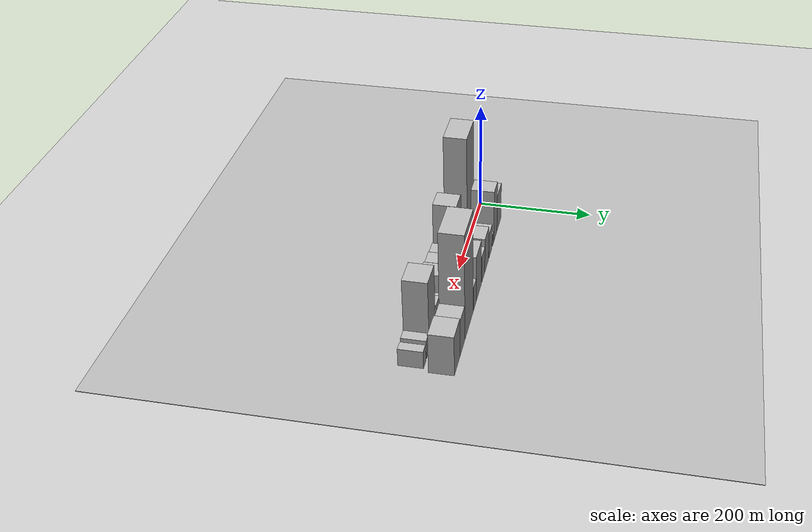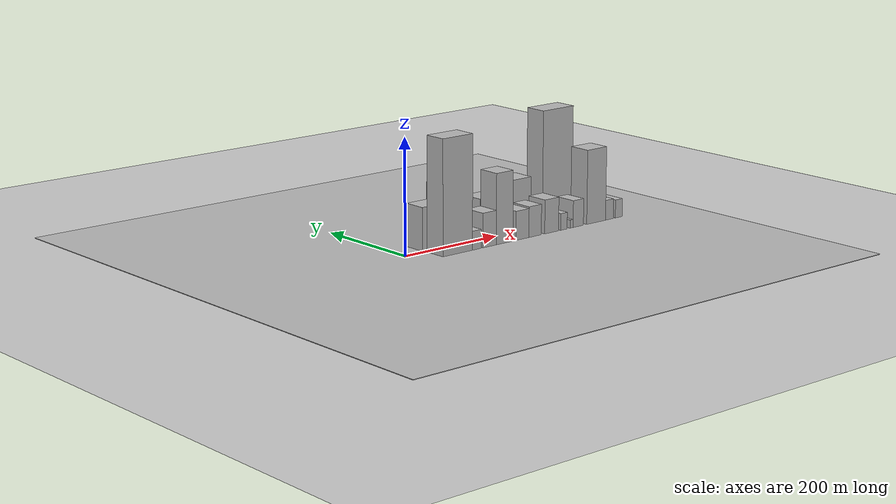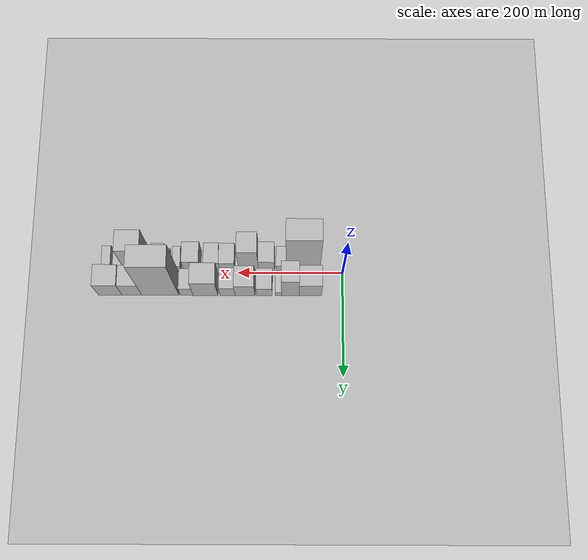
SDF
<?xml version="1.0" encoding="utf-8"?>

<sdf version="1.6">

   <world name="default">

      <gui fullscreen="0">

         <camera name="user_camera">

            <pose>-15 0 4.57585 0 0 0</pose>

            <view_controller>orbit</view_controller>

         </camera>

      </gui>

      <scene>

         <sky>

           <clouds>

             <speed>12</speed>

           </clouds>

         </sky>

         <ambient>0.4 0.4 0.4 1</ambient>

         <background>0.7 0.7 0.7 1</background>

         <shadows>1</shadows>

      </scene>

      <gravity>0 0 -9.8066</gravity>

      <magnetic_field>6e-06 2.3e-05 -4.2e-05</magnetic_field>

      <physics default="0" name="default_physics" type="ode">

         <ode>

            <solver>

               <type>quick</type>

               <iters>10</iters>

               <sor>1.0</sor>

               <use_dynamic_moi_rescaling>0</use_dynamic_moi_rescaling>

            </solver>

            <constraints>

               <cfm>0</cfm>

               <erp>0.2</erp>

               <contact_max_correcting_vel>100</contact_max_correcting_vel>

               <contact_surface_layer>0.001</contact_surface_layer>

            </constraints>

         </ode>

         <max_step_size>0.004</max_step_size>

         <real_time_factor>1</real_time_factor>

         <real_time_update_rate>250</real_time_update_rate>

      </physics>

      <light name="sun" type="directional">

         <cast_shadows>1</cast_shadows>

         <pose>0 0 10 0 0 0</pose>

         <diffuse>0.8 0.8 0.8 1</diffuse>

         <specular>0.2 0.2 0.2 1</specular>

         <attenuation>

            <range>1000</range>

            <constant>0.9</constant>

            <linear>0.01</linear>

            <quadratic>0.001</quadratic>

         </attenuation>

         <direction>-0.5 0.1 -0.9</direction>

      </light>

      <include>

         <name>ground_plane_1</name>

         <uri>model://HANNAS_ground_plane</uri>

         <pose>0 0 0  0 0 0</pose>

      </include>

      <include>

         <name>ground_plane_2</name>

         <uri>model://HANNAS_ground_plane</uri>

         <pose>100 0 0  0 0 0</pose>

      </include>

      <model name="building_1">

         <static>1</static>

         <pose frame="">61.4290 24.5000 0 0.000000 0.000000 1.570796</pose>

         <link name="link">

            <pose frame="">0 0 37.50 0 0 0</pose>

            <collision name="collision">

               <geometry>

                  <box>

                     <size>40.0000 42.8580 75.0000</size>

                  </box>

               </geometry>

               <max_contacts>10</max_contacts>

               <surface>

                  <contact>

                     <ode/>

                  </contact>

                  <bounce/>

                  <friction>

                     <torsional>

                        <ode/>

                     </torsional>

                     <ode/>

                  </friction>

               </surface>

            </collision>

            <visual name="visual">

               <cast_shadows>0</cast_shadows>

               <geometry>

                  <box>

                     <size>40.0000 42.8580 75.0000</size>

                  </box>

               </geometry>

               <material>

                  <script>

                     <uri>model://HANNAS_wall/materials/scripts</uri>

                     <uri>model://HANNAS_wall/materials/textures</uri>

                     <name>vrc/HANNAS_wall</name>

                  </script>

               </material>

            </visual>

            <self_collide>0</self_collide>

            <enable_wind>0</enable_wind>

            <kinematic>0</kinematic>

         </link>

      </model>

      <model name="building_2">

         <static>1</static>

         <pose frame="">99.4082 24.5000 0 0.000000 0.000000 1.570796</pose>

         <link name="link">

            <pose frame="">0 0 52.50 0 0 0</pose>

            <collision name="collision">

               <geometry>

                  <box>

                     <size>40.0000 33.1004 105.0000</size>

                  </box>

               </geometry>

               <max_contacts>10</max_contacts>

               <surface>

                  <contact>

                     <ode/>

                  </contact>

                  <bounce/>

                  <friction>

                     <torsional>

                        <ode/>

                     </torsional>

                     <ode/>

                  </friction>

               </surface>

            </collision>

            <visual name="visual">

               <cast_shadows>0</cast_shadows>

               <geometry>

                  <box>

                     <size>40.0000 33.1004 105.0000</size>

                  </box>

               </geometry>

               <material>

                  <script>

                     <uri>model://HANNAS_wall/materials/scripts</uri>

                     <uri>model://HANNAS_wall/materials/textures</uri>

                     <name>vrc/HANNAS_wall</name>

                  </script>

               </material>

            </visual>

            <self_collide>0</self_collide>

            <enable_wind>0</enable_wind>

            <kinematic>0</kinematic>

         </link>

      </model>

      <model name="building_3">

         <static>1</static>

         <pose frame="">121.8091 24.5000 0 0.000000 0.000000 1.570796</pose>

         <link name="link">

            <pose frame="">0 0 12.00 0 0 0</pose>

            <collision name="collision">

               <geometry>

                  <box>

                     <size>40.0000 11.7015 24.0000</size>

                  </box>

               </geometry>

               <max_contacts>10</max_contacts>

               <surface>

                  <contact>

                     <ode/>

                  </contact>

                  <bounce/>

                  <friction>

                     <torsional>

                        <ode/>

                     </torsional>

                     <ode/>

                  </friction>

               </surface>

            </collision>

            <visual name="visual">

               <cast_shadows>0</cast_shadows>

               <geometry>

                  <box>

                     <size>40.0000 11.7015 24.0000</size>

                  </box>

               </geometry>

               <material>

                  <script>

                     <uri>model://HANNAS_wall/materials/scripts</uri>

                     <uri>model://HANNAS_wall/materials/textures</uri>

                     <name>vrc/HANNAS_wall</name>

                  </script>

               </material>

            </visual>

            <self_collide>0</self_collide>

            <enable_wind>0</enable_wind>

            <kinematic>0</kinematic>

         </link>

      </model>

      <model name="building_4">

         <static>1</static>

         <pose frame="">148.6556 24.5000 0 0.000000 0.000000 1.570796</pose>

         <link name="link">

            <pose frame="">0 0 25.50 0 0 0</pose>

            <collision name="collision">

               <geometry>

                  <box>

                     <size>40.0000 29.9914 51.0000</size>

                  </box>

               </geometry>

               <max_contacts>10</max_contacts>

               <surface>

                  <contact>

                     <ode/>

                  </contact>

                  <bounce/>

                  <friction>

                     <torsional>

                        <ode/>

                     </torsional>

                     <ode/>

                  </friction>

               </surface>

            </collision>

            <visual name="visual">

               <cast_shadows>0</cast_shadows>

               <geometry>

                  <box>

                     <size>40.0000 29.9914 51.0000</size>

                  </box>

               </geometry>

               <material>

                  <script>

                     <uri>model://HANNAS_wall/materials/scripts</uri>

                     <uri>model://HANNAS_wall/materials/textures</uri>

                     <name>vrc/HANNAS_wall</name>

                  </script>

               </material>

            </visual>

            <self_collide>0</self_collide>

            <enable_wind>0</enable_wind>

            <kinematic>0</kinematic>

         </link>

      </model>

      <model name="building_5">

         <static>1</static>

         <pose frame="">185.4385 24.5000 0 0.000000 0.000000 1.570796</pose>

         <link name="link">

            <pose frame="">0 0 34.50 0 0 0</pose>

            <collision name="collision">

               <geometry>

                  <box>

                     <size>40.0000 37.5743 69.0000</size>

                  </box>

               </geometry>

               <max_contacts>10</max_contacts>

               <surface>

                  <contact>

                     <ode/>

                  </contact>

                  <bounce/>

                  <friction>

                     <torsional>

                        <ode/>

                     </torsional>

                     <ode/>

                  </friction>

               </surface>

            </collision>

            <visual name="visual">

               <cast_shadows>0</cast_shadows>

               <geometry>

                  <box>

                     <size>40.0000 37.5743 69.0000</size>

                  </box>

               </geometry>

               <material>

                  <script>

                     <uri>model://HANNAS_wall/materials/scripts</uri>

                     <uri>model://HANNAS_wall/materials/textures</uri>

                     <name>vrc/HANNAS_wall</name>

                  </script>

               </material>

            </visual>

            <self_collide>0</self_collide>

            <enable_wind>0</enable_wind>

            <kinematic>0</kinematic>

         </link>

      </model>

      <model name="building_6">

         <static>1</static>

         <pose frame="">218.5571 24.5000 0 0.000000 0.000000 1.570796</pose>

         <link name="link">

            <pose frame="">0 0 27.00 0 0 0</pose>

            <collision name="collision">

               <geometry>

                  <box>

                     <size>40.0000 28.6629 54.0000</size>

                  </box>

               </geometry>

               <max_contacts>10</max_contacts>

               <surface>

                  <contact>

                     <ode/>

                  </contact>

                  <bounce/>

                  <friction>

                     <torsional>

                        <ode/>

                     </torsional>

                     <ode/>

                  </friction>

               </surface>

            </collision>

            <visual name="visual">

               <cast_shadows>0</cast_shadows>

               <geometry>

                  <box>

                     <size>40.0000 28.6629 54.0000</size>

                  </box>

               </geometry>

               <material>

                  <script>

                     <uri>model://HANNAS_wall/materials/scripts</uri>

                     <uri>model://HANNAS_wall/materials/textures</uri>

                     <name>vrc/HANNAS_wall</name>

                  </script>

               </material>

            </visual>

            <self_collide>0</self_collide>

            <enable_wind>0</enable_wind>

            <kinematic>0</kinematic>

         </link>

      </model>

      <model name="building_7">

         <static>1</static>

         <pose frame="">260.4866 24.5000 0 0.000000 0.000000 1.570796</pose>

         <link name="link">

            <pose frame="">0 0 45.00 0 0 0</pose>

            <collision name="collision">

               <geometry>

                  <box>

                     <size>40.0000 47.1961 90.0000</size>

                  </box>

               </geometry>

               <max_contacts>10</max_contacts>

               <surface>

                  <contact>

                     <ode/>

                  </contact>

                  <bounce/>

                  <friction>

                     <torsional>

                        <ode/>

                     </torsional>

                     <ode/>

                  </friction>

               </surface>

            </collision>

            <visual name="visual">

               <cast_shadows>0</cast_shadows>

               <geometry>

                  <box>

                     <size>40.0000 47.1961 90.0000</size>

                  </box>

               </geometry>

               <material>

                  <script>

                     <uri>model://HANNAS_wall/materials/scripts</uri>

                     <uri>model://HANNAS_wall/materials/textures</uri>

                     <name>vrc/HANNAS_wall</name>

                  </script>

               </material>

            </visual>

            <self_collide>0</self_collide>

            <enable_wind>0</enable_wind>

            <kinematic>0</kinematic>

         </link>

      </model>

      <model name="building_8">

         <static>1</static>

         <pose frame="">296.1059 24.5000 0 0.000000 0.000000 1.570796</pose>

         <link name="link">

            <pose frame="">0 0 24.00 0 0 0</pose>

            <collision name="collision">

               <geometry>

                  <box>

                     <size>40.0000 24.0427 48.0000</size>

                  </box>

               </geometry>

               <max_contacts>10</max_contacts>

               <surface>

                  <contact>

                     <ode/>

                  </contact>

                  <bounce/>

                  <friction>

                     <torsional>

                        <ode/>

                     </torsional>

                     <ode/>

                  </friction>

               </surface>

            </collision>

            <visual name="visual">

               <cast_shadows>0</cast_shadows>

               <geometry>

                  <box>

                     <size>40.0000 24.0427 48.0000</size>

                  </box>

               </geometry>

               <material>

                  <script>

                     <uri>model://HANNAS_wall/materials/scripts</uri>

                     <uri>model://HANNAS_wall/materials/textures</uri>

                     <name>vrc/HANNAS_wall</name>

                  </script>

               </material>

            </visual>

            <self_collide>0</self_collide>

            <enable_wind>0</enable_wind>

            <kinematic>0</kinematic>

         </link>

      </model>

      <model name="building_9">

         <static>1</static>

         <pose frame="">346.4396 24.5000 0 0.000000 0.000000 1.570796</pose>

         <link name="link">

            <pose frame="">0 0 100.50 0 0 0</pose>

            <collision name="collision">

               <geometry>

                  <box>

                     <size>40.0000 70.6246 201.0000</size>

                  </box>

               </geometry>

               <max_contacts>10</max_contacts>

               <surface>

                  <contact>

                     <ode/>

                  </contact>

                  <bounce/>

                  <friction>

                     <torsional>

                        <ode/>

                     </torsional>

                     <ode/>

                  </friction>

               </surface>

            </collision>

            <visual name="visual">

               <cast_shadows>0</cast_shadows>

               <geometry>

                  <box>

                     <size>40.0000 70.6246 201.0000</size>

                  </box>

               </geometry>

               <material>

                  <script>

                     <uri>model://HANNAS_wall/materials/scripts</uri>

                     <uri>model://HANNAS_wall/materials/textures</uri>

                     <name>vrc/HANNAS_wall</name>

                  </script>

               </material>

            </visual>

            <self_collide>0</self_collide>

            <enable_wind>0</enable_wind>

            <kinematic>0</kinematic>

         </link>

      </model>

      <model name="building_10">

         <static>1</static>

         <pose frame="">400.4608 24.5000 0 0.000000 0.000000 1.570796</pose>

         <link name="link">

            <pose frame="">0 0 34.50 0 0 0</pose>

            <collision name="collision">

               <geometry>

                  <box>

                     <size>40.0000 37.4178 69.0000</size>

                  </box>

               </geometry>

               <max_contacts>10</max_contacts>

               <surface>

                  <contact>

                     <ode/>

                  </contact>

                  <bounce/>

                  <friction>

                     <torsional>

                        <ode/>

                     </torsional>

                     <ode/>

                  </friction>

               </surface>

            </collision>

            <visual name="visual">

               <cast_shadows>0</cast_shadows>

               <geometry>

                  <box>

                     <size>40.0000 37.4178 69.0000</size>

                  </box>

               </geometry>

               <material>

                  <script>

                     <uri>model://HANNAS_wall/materials/scripts</uri>

                     <uri>model://HANNAS_wall/materials/textures</uri>

                     <name>vrc/HANNAS_wall</name>

                  </script>

               </material>

            </visual>

            <self_collide>0</self_collide>

            <enable_wind>0</enable_wind>

            <kinematic>0</kinematic>

         </link>

      </model>

      <model name="building_11">

         <static>1</static>

         <pose frame="">441.6127 24.5000 0 0.000000 0.000000 1.570796</pose>

         <link name="link">

            <pose frame="">0 0 37.50 0 0 0</pose>

            <collision name="collision">

               <geometry>

                  <box>

                     <size>40.0000 44.8860 75.0000</size>

                  </box>

               </geometry>

               <max_contacts>10</max_contacts>

               <surface>

                  <contact>

                     <ode/>

                  </contact>

                  <bounce/>

                  <friction>

                     <torsional>

                        <ode/>

                     </torsional>

                     <ode/>

                  </friction>

               </surface>

            </collision>

            <visual name="visual">

               <cast_shadows>0</cast_shadows>

               <geometry>

                  <box>

                     <size>40.0000 44.8860 75.0000</size>

                  </box>

               </geometry>

               <material>

                  <script>

                     <uri>model://HANNAS_wall/materials/scripts</uri>

                     <uri>model://HANNAS_wall/materials/textures</uri>

                     <name>vrc/HANNAS_wall</name>

                  </script>

               </material>

            </visual>

            <self_collide>0</self_collide>

            <enable_wind>0</enable_wind>

            <kinematic>0</kinematic>

         </link>

      </model>

      <model name="building_12">

         <static>1</static>

         <pose frame="">75.1191 -24.5000 0 0.000000 0.000000 1.570796</pose>

         <link name="link">

            <pose frame="">0 0 99.00 0 0 0</pose>

            <collision name="collision">

               <geometry>

                  <box>

                     <size>40.0000 64.2383 198.0000</size>

                  </box>

               </geometry>

               <max_contacts>10</max_contacts>

               <surface>

                  <contact>

                     <ode/>

                  </contact>

                  <bounce/>

                  <friction>

                     <torsional>

                        <ode/>

                     </torsional>

                     <ode/>

                  </friction>

               </surface>

            </collision>

            <visual name="visual">

               <cast_shadows>0</cast_shadows>

               <geometry>

                  <box>

                     <size>40.0000 64.2383 198.0000</size>

                  </box>

               </geometry>

               <material>

                  <script>

                     <uri>model://HANNAS_wall/materials/scripts</uri>

                     <uri>model://HANNAS_wall/materials/textures</uri>

                     <name>vrc/HANNAS_wall</name>

                  </script>

               </material>

            </visual>

            <self_collide>0</self_collide>

            <enable_wind>0</enable_wind>

            <kinematic>0</kinematic>

         </link>

      </model>

      <model name="building_13">

         <static>1</static>

         <pose frame="">117.0187 -24.5000 0 0.000000 0.000000 1.570796</pose>

         <link name="link">

            <pose frame="">0 0 16.50 0 0 0</pose>

            <collision name="collision">

               <geometry>

                  <box>

                     <size>40.0000 19.5610 33.0000</size>

                  </box>

               </geometry>

               <max_contacts>10</max_contacts>

               <surface>

                  <contact>

                     <ode/>

                  </contact>

                  <bounce/>

                  <friction>

                     <torsional>

                        <ode/>

                     </torsional>

                     <ode/>

                  </friction>

               </surface>

            </collision>

            <visual name="visual">

               <cast_shadows>0</cast_shadows>

               <geometry>

                  <box>

                     <size>40.0000 19.5610 33.0000</size>

                  </box>

               </geometry>

               <material>

                  <script>

                     <uri>model://HANNAS_wall/materials/scripts</uri>

                     <uri>model://HANNAS_wall/materials/textures</uri>

                     <name>vrc/HANNAS_wall</name>

                  </script>

               </material>

            </visual>

            <self_collide>0</self_collide>

            <enable_wind>0</enable_wind>

            <kinematic>0</kinematic>

         </link>

      </model>

      <model name="building_14">

         <static>1</static>

         <pose frame="">145.0235 -24.5000 0 0.000000 0.000000 1.570796</pose>

         <link name="link">

            <pose frame="">0 0 30.00 0 0 0</pose>

            <collision name="collision">

               <geometry>

                  <box>

                     <size>40.0000 30.4486 60.0000</size>

                  </box>

               </geometry>

               <max_contacts>10</max_contacts>

               <surface>

                  <contact>

                     <ode/>

                  </contact>

                  <bounce/>

                  <friction>

                     <torsional>

                        <ode/>

                     </torsional>

                     <ode/>

                  </friction>

               </surface>

            </collision>

            <visual name="visual">

               <cast_shadows>0</cast_shadows>

               <geometry>

                  <box>

                     <size>40.0000 30.4486 60.0000</size>

                  </box>

               </geometry>

               <material>

                  <script>

                     <uri>model://HANNAS_wall/materials/scripts</uri>

                     <uri>model://HANNAS_wall/materials/textures</uri>

                     <name>vrc/HANNAS_wall</name>

                  </script>

               </material>

            </visual>

            <self_collide>0</self_collide>

            <enable_wind>0</enable_wind>

            <kinematic>0</kinematic>

         </link>

      </model>

      <model name="building_15">

         <static>1</static>

         <pose frame="">178.9129 -24.5000 0 0.000000 0.000000 1.570796</pose>

         <link name="link">

            <pose frame="">0 0 61.50 0 0 0</pose>

            <collision name="collision">

               <geometry>

                  <box>

                     <size>40.0000 37.3303 123.0000</size>

                  </box>

               </geometry>

               <max_contacts>10</max_contacts>

               <surface>

                  <contact>

                     <ode/>

                  </contact>

                  <bounce/>

                  <friction>

                     <torsional>

                        <ode/>

                     </torsional>

                     <ode/>

                  </friction>

               </surface>

            </collision>

            <visual name="visual">

               <cast_shadows>0</cast_shadows>

               <geometry>

                  <box>

                     <size>40.0000 37.3303 123.0000</size>

                  </box>

               </geometry>

               <material>

                  <script>

                     <uri>model://HANNAS_wall/materials/scripts</uri>

                     <uri>model://HANNAS_wall/materials/textures</uri>

                     <name>vrc/HANNAS_wall</name>

                  </script>

               </material>

            </visual>

            <self_collide>0</self_collide>

            <enable_wind>0</enable_wind>

            <kinematic>0</kinematic>

         </link>

      </model>

      <model name="building_16">

         <static>1</static>

         <pose frame="">201.2308 -24.5000 0 0.000000 0.000000 1.570796</pose>

         <link name="link">

            <pose frame="">0 0 7.50 0 0 0</pose>

            <collision name="collision">

               <geometry>

                  <box>

                     <size>40.0000 7.3055 15.0000</size>

                  </box>

               </geometry>

               <max_contacts>10</max_contacts>

               <surface>

                  <contact>

                     <ode/>

                  </contact>

                  <bounce/>

                  <friction>

                     <torsional>

                        <ode/>

                     </torsional>

                     <ode/>

                  </friction>

               </surface>

            </collision>

            <visual name="visual">

               <cast_shadows>0</cast_shadows>

               <geometry>

                  <box>

                     <size>40.0000 7.3055 15.0000</size>

                  </box>

               </geometry>

               <material>

                  <script>

                     <uri>model://HANNAS_wall/materials/scripts</uri>

                     <uri>model://HANNAS_wall/materials/textures</uri>

                     <name>vrc/HANNAS_wall</name>

                  </script>

               </material>

            </visual>

            <self_collide>0</self_collide>

            <enable_wind>0</enable_wind>

            <kinematic>0</kinematic>

         </link>

      </model>

      <model name="building_17">

         <static>1</static>

         <pose frame="">219.5915 -24.5000 0 0.000000 0.000000 1.570796</pose>

         <link name="link">

            <pose frame="">0 0 25.50 0 0 0</pose>

            <collision name="collision">

               <geometry>

                  <box>

                     <size>40.0000 29.4157 51.0000</size>

                  </box>

               </geometry>

               <max_contacts>10</max_contacts>

               <surface>

                  <contact>

                     <ode/>

                  </contact>

                  <bounce/>

                  <friction>

                     <torsional>

                        <ode/>

                     </torsional>

                     <ode/>

                  </friction>

               </surface>

            </collision>

            <visual name="visual">

               <cast_shadows>0</cast_shadows>

               <geometry>

                  <box>

                     <size>40.0000 29.4157 51.0000</size>

                  </box>

               </geometry>

               <material>

                  <script>

                     <uri>model://HANNAS_wall/materials/scripts</uri>

                     <uri>model://HANNAS_wall/materials/textures</uri>

                     <name>vrc/HANNAS_wall</name>

                  </script>

               </material>

            </visual>

            <self_collide>0</self_collide>

            <enable_wind>0</enable_wind>

            <kinematic>0</kinematic>

         </link>

      </model>

      <model name="building_18">

         <static>1</static>

         <pose frame="">248.5822 -24.5000 0 0.000000 0.000000 1.570796</pose>

         <link name="link">

            <pose frame="">0 0 27.00 0 0 0</pose>

            <collision name="collision">

               <geometry>

                  <box>

                     <size>40.0000 28.5657 54.0000</size>

                  </box>

               </geometry>

               <max_contacts>10</max_contacts>

               <surface>

                  <contact>

                     <ode/>

                  </contact>

                  <bounce/>

                  <friction>

                     <torsional>

                        <ode/>

                     </torsional>

                     <ode/>

                  </friction>

               </surface>

            </collision>

            <visual name="visual">

               <cast_shadows>0</cast_shadows>

               <geometry>

                  <box>

                     <size>40.0000 28.5657 54.0000</size>

                  </box>

               </geometry>

               <material>

                  <script>

                     <uri>model://HANNAS_wall/materials/scripts</uri>

                     <uri>model://HANNAS_wall/materials/textures</uri>

                     <name>vrc/HANNAS_wall</name>

                  </script>

               </material>

            </visual>

            <self_collide>0</self_collide>

            <enable_wind>0</enable_wind>

            <kinematic>0</kinematic>

         </link>

      </model>

      <model name="building_19">

         <static>1</static>

         <pose frame="">287.0591 -24.5000 0 0.000000 0.000000 1.570796</pose>

         <link name="link">

            <pose frame="">0 0 30.00 0 0 0</pose>

            <collision name="collision">

               <geometry>

                  <box>

                     <size>40.0000 32.3880 60.0000</size>

                  </box>

               </geometry>

               <max_contacts>10</max_contacts>

               <surface>

                  <contact>

                     <ode/>

                  </contact>

                  <bounce/>

                  <friction>

                     <torsional>

                        <ode/>

                     </torsional>

                     <ode/>

                  </friction>

               </surface>

            </collision>

            <visual name="visual">

               <cast_shadows>0</cast_shadows>

               <geometry>

                  <box>

                     <size>40.0000 32.3880 60.0000</size>

                  </box>

               </geometry>

               <material>

                  <script>

                     <uri>model://HANNAS_wall/materials/scripts</uri>

                     <uri>model://HANNAS_wall/materials/textures</uri>

                     <name>vrc/HANNAS_wall</name>

                  </script>

               </material>

            </visual>

            <self_collide>0</self_collide>

            <enable_wind>0</enable_wind>

            <kinematic>0</kinematic>

         </link>

      </model>

      <model name="building_20">

         <static>1</static>

         <pose frame="">315.8708 -24.5000 0 0.000000 0.000000 1.570796</pose>

         <link name="link">

            <pose frame="">0 0 15.00 0 0 0</pose>

            <collision name="collision">

               <geometry>

                  <box>

                     <size>40.0000 15.2355 30.0000</size>

                  </box>

               </geometry>

               <max_contacts>10</max_contacts>

               <surface>

                  <contact>

                     <ode/>

                  </contact>

                  <bounce/>

                  <friction>

                     <torsional>

                        <ode/>

                     </torsional>

                     <ode/>

                  </friction>

               </surface>

            </collision>

            <visual name="visual">

               <cast_shadows>0</cast_shadows>

               <geometry>

                  <box>

                     <size>40.0000 15.2355 30.0000</size>

                  </box>

               </geometry>

               <material>

                  <script>

                     <uri>model://HANNAS_wall/materials/scripts</uri>

                     <uri>model://HANNAS_wall/materials/textures</uri>

                     <name>vrc/HANNAS_wall</name>

                  </script>

               </material>

            </visual>

            <self_collide>0</self_collide>

            <enable_wind>0</enable_wind>

            <kinematic>0</kinematic>

         </link>

      </model>

      <model name="building_21">

         <static>1</static>

         <pose frame="">334.1088 -24.5000 0 0.000000 0.000000 1.570796</pose>

         <link name="link">

            <pose frame="">0 0 7.50 0 0 0</pose>

            <collision name="collision">

               <geometry>

                  <box>

                     <size>40.0000 7.2406 15.0000</size>

                  </box>

               </geometry>

               <max_contacts>10</max_contacts>

               <surface>

                  <contact>

                     <ode/>

                  </contact>

                  <bounce/>

                  <friction>

                     <torsional>

                        <ode/>

                     </torsional>

                     <ode/>

                  </friction>

               </surface>

            </collision>

            <visual name="visual">

               <cast_shadows>0</cast_shadows>

               <geometry>

                  <box>

                     <size>40.0000 7.2406 15.0000</size>

                  </box>

               </geometry>

               <material>

                  <script>

                     <uri>model://HANNAS_wall/materials/scripts</uri>

                     <uri>model://HANNAS_wall/materials/textures</uri>

                     <name>vrc/HANNAS_wall</name>

                  </script>

               </material>

            </visual>

            <self_collide>0</self_collide>

            <enable_wind>0</enable_wind>

            <kinematic>0</kinematic>

         </link>

      </model>

      <model name="building_22">

         <static>1</static>

         <pose frame="">350.0296 -24.5000 0 0.000000 0.000000 1.570796</pose>

         <link name="link">

            <pose frame="">0 0 24.00 0 0 0</pose>

            <collision name="collision">

               <geometry>

                  <box>

                     <size>40.0000 24.6010 48.0000</size>

                  </box>

               </geometry>

               <max_contacts>10</max_contacts>

               <surface>

                  <contact>

                     <ode/>

                  </contact>

                  <bounce/>

                  <friction>

                     <torsional>

                        <ode/>

                     </torsional>

                     <ode/>

                  </friction>

               </surface>

            </collision>

            <visual name="visual">

               <cast_shadows>0</cast_shadows>

               <geometry>

                  <box>

                     <size>40.0000 24.6010 48.0000</size>

                  </box>

               </geometry>

               <material>

                  <script>

                     <uri>model://HANNAS_wall/materials/scripts</uri>

                     <uri>model://HANNAS_wall/materials/textures</uri>

                     <name>vrc/HANNAS_wall</name>

                  </script>

               </material>

            </visual>

            <self_collide>0</self_collide>

            <enable_wind>0</enable_wind>

            <kinematic>0</kinematic>

         </link>

      </model>

      <model name="building_23">

         <static>1</static>

         <pose frame="">393.1494 -24.5000 0 0.000000 0.000000 1.570796</pose>

         <link name="link">

            <pose frame="">0 0 66.00 0 0 0</pose>

            <collision name="collision">

               <geometry>

                  <box>

                     <size>40.0000 45.6386 132.0000</size>

                  </box>

               </geometry>

               <max_contacts>10</max_contacts>

               <surface>

                  <contact>

                     <ode/>

                  </contact>

                  <bounce/>

                  <friction>

                     <torsional>

                        <ode/>

                     </torsional>

                     <ode/>

                  </friction>

               </surface>

            </collision>

            <visual name="visual">

               <cast_shadows>0</cast_shadows>

               <geometry>

                  <box>

                     <size>40.0000 45.6386 132.0000</size>

                  </box>

               </geometry>

               <material>

                  <script>

                     <uri>model://HANNAS_wall/materials/scripts</uri>

                     <uri>model://HANNAS_wall/materials/textures</uri>

                     <name>vrc/HANNAS_wall</name>

                  </script>

               </material>

            </visual>

            <self_collide>0</self_collide>

            <enable_wind>0</enable_wind>

            <kinematic>0</kinematic>

         </link>

      </model>

      <model name="building_24">

         <static>1</static>

         <pose frame="">425.4387 -24.5000 0 0.000000 0.000000 1.570796</pose>

         <link name="link">

            <pose frame="">0 0 18.00 0 0 0</pose>

            <collision name="collision">

               <geometry>

                  <box>

                     <size>40.0000 18.9399 36.0000</size>

                  </box>

               </geometry>

               <max_contacts>10</max_contacts>

               <surface>

                  <contact>

                     <ode/>

                  </contact>

                  <bounce/>

                  <friction>

                     <torsional>

                        <ode/>

                     </torsional>

                     <ode/>

                  </friction>

               </surface>

            </collision>

            <visual name="visual">

               <cast_shadows>0</cast_shadows>

               <geometry>

                  <box>

                     <size>40.0000 18.9399 36.0000</size>

                  </box>

               </geometry>

               <material>

                  <script>

                     <uri>model://HANNAS_wall/materials/scripts</uri>

                     <uri>model://HANNAS_wall/materials/textures</uri>

                     <name>vrc/HANNAS_wall</name>

                  </script>

               </material>

            </visual>

            <self_collide>0</self_collide>

            <enable_wind>0</enable_wind>

            <kinematic>0</kinematic>

         </link>

      </model>

      <model name="building_25">

         <static>1</static>

         <pose frame="">448.4150 -24.5000 0 0.000000 0.000000 1.570796</pose>

         <link name="link">

            <pose frame="">0 0 16.50 0 0 0</pose>

            <collision name="collision">

               <geometry>

                  <box>

                     <size>40.0000 17.0128 33.0000</size>

                  </box>

               </geometry>

               <max_contacts>10</max_contacts>

               <surface>

                  <contact>

                     <ode/>

                  </contact>

                  <bounce/>

                  <friction>

                     <torsional>

                        <ode/>

                     </torsional>

                     <ode/>

                  </friction>

               </surface>

            </collision>

            <visual name="visual">

               <cast_shadows>0</cast_shadows>

               <geometry>

                  <box>

                     <size>40.0000 17.0128 33.0000</size>

                  </box>

               </geometry>

               <material>

                  <script>

                     <uri>model://HANNAS_wall/materials/scripts</uri>

                     <uri>model://HANNAS_wall/materials/textures</uri>

                     <name>vrc/HANNAS_wall</name>

                  </script>

               </material>

            </visual>

            <self_collide>0</self_collide>

            <enable_wind>0</enable_wind>

            <kinematic>0</kinematic>

         </link>

      </model>

   </world>

</sdf>

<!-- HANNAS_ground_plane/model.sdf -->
<sdf version="1.4">
<model name="HANNAS_ground_plane">
  <static>true</static>
    <link name="link">
      <collision name="collision">
        <geometry>
          <plane>
            <normal>0 0 1</normal>
            <size>1000 1000</size>
          </plane>
        </geometry>
        <surface>
          <friction>
            <ode>
              <mu>100</mu>
              <mu2>50</mu2>
            </ode>
          </friction>
        </surface>
      </collision>
      <visual name="visual">
        <cast_shadows>false</cast_shadows>
        <geometry>
          <plane>
            <normal>0 0 1</normal>
            <size>1000 1000</size>
          </plane>
        </geometry>
        <material>
          <script>
            <uri>model://HANNAS_ground_plane/materials/scripts/HANNAS_ground_plane.material</uri>
	    <uri>model://HANNAS_ground_plane/materials/textures</uri>
            <name>HANNASGroundPlane/Image</name>
          </script>
        </material>
      </visual>
    </link>
  </model>
</sdf>
